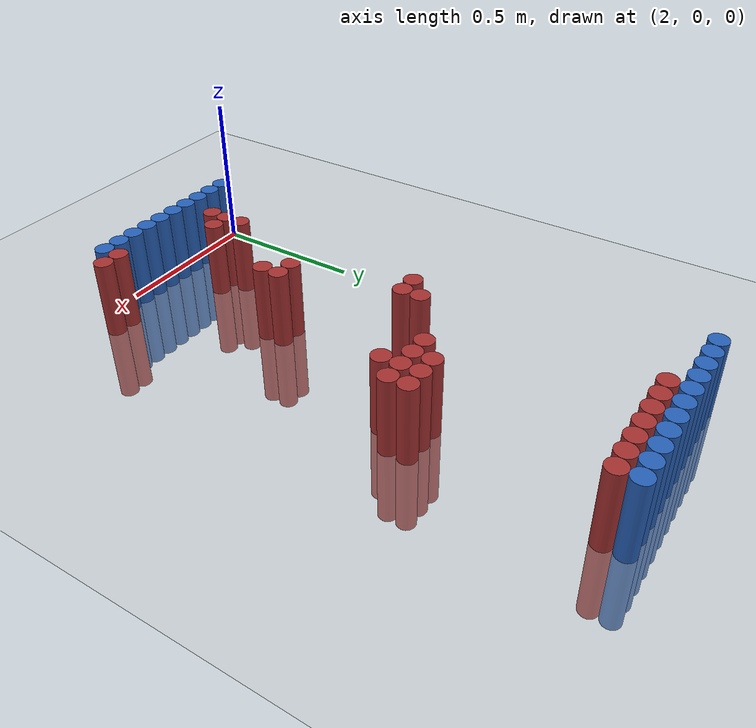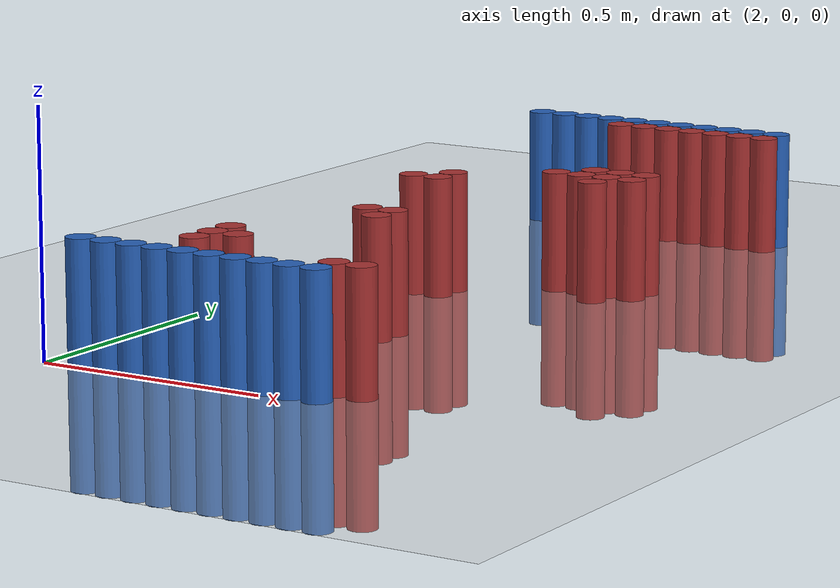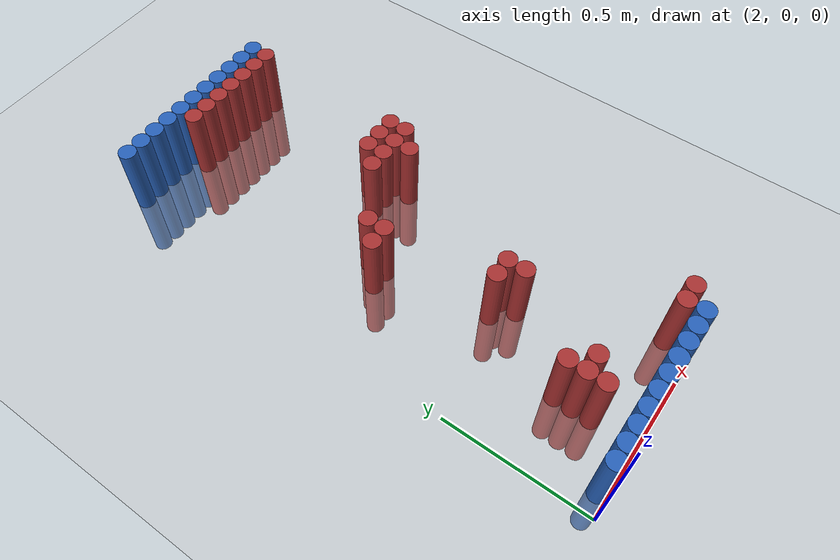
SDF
<sdf version="1.6">
 <world name="default">
  <model name="ground_plane">
   <static>1</static>
   <link name="link">
    <collision name="collision">
     <geometry><plane><normal>0 0 1</normal><size>100 100</size></plane></geometry>
     <surface><friction><ode><mu>100</mu><mu2>50</mu2></ode></friction></surface>
    </collision>
    <visual name="visual">
     <cast_shadows>0</cast_shadows>
     <geometry><plane><normal>0 0 1</normal><size>100 100</size></plane></geometry>
     <material>
      <script><uri>file://media/materials/scripts/gazebo.material</uri><name>Gazebo/Grey</name></script>
     </material>
    </visual>
   </link>
  </model>
  <model name="unit_cylinder_95">
   <static>1</static>
   <pose>2.070000 1.770000 0.000000 0.000000 0.000000 0.000000</pose>
   <link name="link">
    <inertial>
     <mass>1</mass>
     <inertia><ixx>0.145833</ixx><ixy>0</ixy><ixz>0</ixz><iyy>0.145833</iyy><iyz>0</iyz><izz>0.125</izz></inertia>
    </inertial>
    <collision name="collision">
     <geometry><cylinder><radius>0.030000</radius><length>0.5</length></cylinder></geometry>
    </collision>
    <visual name="visual">
     <geometry><cylinder><radius>0.030000</radius><length>0.5</length></cylinder></geometry>
     <material>
      <ambient>0.152000 0.379000 0.720000 1</ambient>
      <diffuse>0.152000 0.379000 0.720000 1</diffuse>
     </material>
     <material>
      <script><name>Gazebo/Grey</name><uri>file://media/materials/scripts/gazebo.material</uri></script>
     </material>
    </visual>
   </link>
  </model>
  <model name="unit_cylinder_96">
   <static>1</static>
   <pose>2.130000 1.770000 0.000000 0.000000 0.000000 0.000000</pose>
   <link name="link">
    <inertial>
     <mass>1</mass>
     <inertia><ixx>0.145833</ixx><ixy>0</ixy><ixz>0</ixz><iyy>0.145833</iyy><iyz>0</iyz><izz>0.125</izz></inertia>
    </inertial>
    <collision name="collision">
     <geometry><cylinder><radius>0.030000</radius><length>0.5</length></cylinder></geometry>
    </collision>
    <visual name="visual">
     <geometry><cylinder><radius>0.030000</radius><length>0.5</length></cylinder></geometry>
     <material>
      <ambient>0.152000 0.379000 0.720000 1</ambient>
      <diffuse>0.152000 0.379000 0.720000 1</diffuse>
     </material>
     <material>
      <script><name>Gazebo/Grey</name><uri>file://media/materials/scripts/gazebo.material</uri></script>
     </material>
    </visual>
   </link>
  </model>
  <model name="unit_cylinder_97">
   <static>1</static>
   <pose>2.190000 1.770000 0.000000 0.000000 0.000000 0.000000</pose>
   <link name="link">
    <inertial>
     <mass>1</mass>
     <inertia><ixx>0.145833</ixx><ixy>0</ixy><ixz>0</ixz><iyy>0.145833</iyy><iyz>0</iyz><izz>0.125</izz></inertia>
    </inertial>
    <collision name="collision">
     <geometry><cylinder><radius>0.030000</radius><length>0.5</length></cylinder></geometry>
    </collision>
    <visual name="visual">
     <geometry><cylinder><radius>0.030000</radius><length>0.5</length></cylinder></geometry>
     <material>
      <ambient>0.152000 0.379000 0.720000 1</ambient>
      <diffuse>0.152000 0.379000 0.720000 1</diffuse>
     </material>
     <material>
      <script><name>Gazebo/Grey</name><uri>file://media/materials/scripts/gazebo.material</uri></script>
     </material>
    </visual>
   </link>
  </model>
  <model name="unit_cylinder_98">
   <static>1</static>
   <pose>2.250000 1.770000 0.000000 0.000000 0.000000 0.000000</pose>
   <link name="link">
    <inertial>
     <mass>1</mass>
     <inertia><ixx>0.145833</ixx><ixy>0</ixy><ixz>0</ixz><iyy>0.145833</iyy><iyz>0</iyz><izz>0.125</izz></inertia>
    </inertial>
    <collision name="collision">
     <geometry><cylinder><radius>0.030000</radius><length>0.5</length></cylinder></geometry>
    </collision>
    <visual name="visual">
     <geometry><cylinder><radius>0.030000</radius><length>0.5</length></cylinder></geometry>
     <material>
      <ambient>0.152000 0.379000 0.720000 1</ambient>
      <diffuse>0.152000 0.379000 0.720000 1</diffuse>
     </material>
     <material>
      <script><name>Gazebo/Grey</name><uri>file://media/materials/scripts/gazebo.material</uri></script>
     </material>
    </visual>
   </link>
  </model>
  <model name="unit_cylinder_99">
   <static>1</static>
   <pose>2.310000 1.770000 0.000000 0.000000 0.000000 0.000000</pose>
   <link name="link">
    <inertial>
     <mass>1</mass>
     <inertia><ixx>0.145833</ixx><ixy>0</ixy><ixz>0</ixz><iyy>0.145833</iyy><iyz>0</iyz><izz>0.125</izz></inertia>
    </inertial>
    <collision name="collision">
     <geometry><cylinder><radius>0.030000</radius><length>0.5</length></cylinder></geometry>
    </collision>
    <visual name="visual">
     <geometry><cylinder><radius>0.030000</radius><length>0.5</length></cylinder></geometry>
     <material>
      <ambient>0.152000 0.379000 0.720000 1</ambient>
      <diffuse>0.152000 0.379000 0.720000 1</diffuse>
     </material>
     <material>
      <script><name>Gazebo/Grey</name><uri>file://media/materials/scripts/gazebo.material</uri></script>
     </material>
    </visual>
   </link>
  </model>
  <model name="unit_cylinder_100">
   <static>1</static>
   <pose>2.370000 1.770000 0.000000 0.000000 0.000000 0.000000</pose>
   <link name="link">
    <inertial>
     <mass>1</mass>
     <inertia><ixx>0.145833</ixx><ixy>0</ixy><ixz>0</ixz><iyy>0.145833</iyy><iyz>0</iyz><izz>0.125</izz></inertia>
    </inertial>
    <collision name="collision">
     <geometry><cylinder><radius>0.030000</radius><length>0.5</length></cylinder></geometry>
    </collision>
    <visual name="visual">
     <geometry><cylinder><radius>0.030000</radius><length>0.5</length></cylinder></geometry>
     <material>
      <ambient>0.152000 0.379000 0.720000 1</ambient>
      <diffuse>0.152000 0.379000 0.720000 1</diffuse>
     </material>
     <material>
      <script><name>Gazebo/Grey</name><uri>file://media/materials/scripts/gazebo.material</uri></script>
     </material>
    </visual>
   </link>
  </model>
  <model name="unit_cylinder_101">
   <static>1</static>
   <pose>2.430000 1.770000 0.000000 0.000000 0.000000 0.000000</pose>
   <link name="link">
    <inertial>
     <mass>1</mass>
     <inertia><ixx>0.145833</ixx><ixy>0</ixy><ixz>0</ixz><iyy>0.145833</iyy><iyz>0</iyz><izz>0.125</izz></inertia>
    </inertial>
    <collision name="collision">
     <geometry><cylinder><radius>0.030000</radius><length>0.5</length></cylinder></geometry>
    </collision>
    <visual name="visual">
     <geometry><cylinder><radius>0.030000</radius><length>0.5</length></cylinder></geometry>
     <material>
      <ambient>0.152000 0.379000 0.720000 1</ambient>
      <diffuse>0.152000 0.379000 0.720000 1</diffuse>
     </material>
     <material>
      <script><name>Gazebo/Grey</name><uri>file://media/materials/scripts/gazebo.material</uri></script>
     </material>
    </visual>
   </link>
  </model>
  <model name="unit_cylinder_102">
   <static>1</static>
   <pose>2.490000 1.770000 0.000000 0.000000 0.000000 0.000000</pose>
   <link name="link">
    <inertial>
     <mass>1</mass>
     <inertia><ixx>0.145833</ixx><ixy>0</ixy><ixz>0</ixz><iyy>0.145833</iyy><iyz>0</iyz><izz>0.125</izz></inertia>
    </inertial>
    <collision name="collision">
     <geometry><cylinder><radius>0.030000</radius><length>0.5</length></cylinder></geometry>
    </collision>
    <visual name="visual">
     <geometry><cylinder><radius>0.030000</radius><length>0.5</length></cylinder></geometry>
     <material>
      <ambient>0.152000 0.379000 0.720000 1</ambient>
      <diffuse>0.152000 0.379000 0.720000 1</diffuse>
     </material>
     <material>
      <script><name>Gazebo/Grey</name><uri>file://media/materials/scripts/gazebo.material</uri></script>
     </material>
    </visual>
   </link>
  </model>
  <model name="unit_cylinder_103">
   <static>1</static>
   <pose>2.550000 1.770000 0.000000 0.000000 0.000000 0.000000</pose>
   <link name="link">
    <inertial>
     <mass>1</mass>
     <inertia><ixx>0.145833</ixx><ixy>0</ixy><ixz>0</ixz><iyy>0.145833</iyy><iyz>0</iyz><izz>0.125</izz></inertia>
    </inertial>
    <collision name="collision">
     <geometry><cylinder><radius>0.030000</radius><length>0.5</length></cylinder></geometry>
    </collision>
    <visual name="visual">
     <geometry><cylinder><radius>0.030000</radius><length>0.5</length></cylinder></geometry>
     <material>
      <ambient>0.152000 0.379000 0.720000 1</ambient>
      <diffuse>0.152000 0.379000 0.720000 1</diffuse>
     </material>
     <material>
      <script><name>Gazebo/Grey</name><uri>file://media/materials/scripts/gazebo.material</uri></script>
     </material>
    </visual>
   </link>
  </model>
  <model name="unit_cylinder_104">
   <static>1</static>
   <pose>2.610000 1.770000 0.000000 0.000000 0.000000 0.000000</pose>
   <link name="link">
    <inertial>
     <mass>1</mass>
     <inertia><ixx>0.145833</ixx><ixy>0</ixy><ixz>0</ixz><iyy>0.145833</iyy><iyz>0</iyz><izz>0.125</izz></inertia>
    </inertial>
    <collision name="collision">
     <geometry><cylinder><radius>0.030000</radius><length>0.5</length></cylinder></geometry>
    </collision>
    <visual name="visual">
     <geometry><cylinder><radius>0.030000</radius><length>0.5</length></cylinder></geometry>
     <material>
      <ambient>0.152000 0.379000 0.720000 1</ambient>
      <diffuse>0.152000 0.379000 0.720000 1</diffuse>
     </material>
     <material>
      <script><name>Gazebo/Grey</name><uri>file://media/materials/scripts/gazebo.material</uri></script>
     </material>
    </visual>
   </link>
  </model>
  <model name="unit_cylinder_105">
   <static>1</static>
   <pose>2.670000 1.770000 0.000000 0.000000 0.000000 0.000000</pose>
   <link name="link">
    <inertial>
     <mass>1</mass>
     <inertia><ixx>0.145833</ixx><ixy>0</ixy><ixz>0</ixz><iyy>0.145833</iyy><iyz>0</iyz><izz>0.125</izz></inertia>
    </inertial>
    <collision name="collision">
     <geometry><cylinder><radius>0.030000</radius><length>0.5</length></cylinder></geometry>
    </collision>
    <visual name="visual">
     <geometry><cylinder><radius>0.030000</radius><length>0.5</length></cylinder></geometry>
     <material>
      <ambient>0.152000 0.379000 0.720000 1</ambient>
      <diffuse>0.152000 0.379000 0.720000 1</diffuse>
     </material>
     <material>
      <script><name>Gazebo/Grey</name><uri>file://media/materials/scripts/gazebo.material</uri></script>
     </material>
    </visual>
   </link>
  </model>
  <model name="unit_cylinder_125">
   <static>1</static>
   <pose>2.310000 1.710000 0.000000 0.000000 0.000000 0.000000</pose>
   <link name="link">
    <inertial>
     <mass>1</mass>
     <inertia><ixx>0.145833</ixx><ixy>0</ixy><ixz>0</ixz><iyy>0.145833</iyy><iyz>0</iyz><izz>0.125</izz></inertia>
    </inertial>
    <collision name="collision">
     <geometry><cylinder><radius>0.030000</radius><length>0.5</length></cylinder></geometry>
    </collision>
    <visual name="visual">
     <geometry><cylinder><radius>0.030000</radius><length>0.5</length></cylinder></geometry>
     <material>
      <ambient>0.648000 0.192000 0.192000 1</ambient>
      <diffuse>0.648000 0.192000 0.192000 1</diffuse>
     </material>
     <material>
      <script><name>Gazebo/Grey</name><uri>file://media/materials/scripts/gazebo.material</uri></script>
     </material>
    </visual>
   </link>
  </model>
  <model name="unit_cylinder_126">
   <static>1</static>
   <pose>2.370000 1.710000 0.000000 0.000000 0.000000 0.000000</pose>
   <link name="link">
    <inertial>
     <mass>1</mass>
     <inertia><ixx>0.145833</ixx><ixy>0</ixy><ixz>0</ixz><iyy>0.145833</iyy><iyz>0</iyz><izz>0.125</izz></inertia>
    </inertial>
    <collision name="collision">
     <geometry><cylinder><radius>0.030000</radius><length>0.5</length></cylinder></geometry>
    </collision>
    <visual name="visual">
     <geometry><cylinder><radius>0.030000</radius><length>0.5</length></cylinder></geometry>
     <material>
      <ambient>0.648000 0.192000 0.192000 1</ambient>
      <diffuse>0.648000 0.192000 0.192000 1</diffuse>
     </material>
     <material>
      <script><name>Gazebo/Grey</name><uri>file://media/materials/scripts/gazebo.material</uri></script>
     </material>
    </visual>
   </link>
  </model>
  <model name="unit_cylinder_127">
   <static>1</static>
   <pose>2.430000 1.710000 0.000000 0.000000 0.000000 0.000000</pose>
   <link name="link">
    <inertial>
     <mass>1</mass>
     <inertia><ixx>0.145833</ixx><ixy>0</ixy><ixz>0</ixz><iyy>0.145833</iyy><iyz>0</iyz><izz>0.125</izz></inertia>
    </inertial>
    <collision name="collision">
     <geometry><cylinder><radius>0.030000</radius><length>0.5</length></cylinder></geometry>
    </collision>
    <visual name="visual">
     <geometry><cylinder><radius>0.030000</radius><length>0.5</length></cylinder></geometry>
     <material>
      <ambient>0.648000 0.192000 0.192000 1</ambient>
      <diffuse>0.648000 0.192000 0.192000 1</diffuse>
     </material>
     <material>
      <script><name>Gazebo/Grey</name><uri>file://media/materials/scripts/gazebo.material</uri></script>
     </material>
    </visual>
   </link>
  </model>
  <model name="unit_cylinder_128">
   <static>1</static>
   <pose>2.490000 1.710000 0.000000 0.000000 0.000000 0.000000</pose>
   <link name="link">
    <inertial>
     <mass>1</mass>
     <inertia><ixx>0.145833</ixx><ixy>0</ixy><ixz>0</ixz><iyy>0.145833</iyy><iyz>0</iyz><izz>0.125</izz></inertia>
    </inertial>
    <collision name="collision">
     <geometry><cylinder><radius>0.030000</radius><length>0.5</length></cylinder></geometry>
    </collision>
    <visual name="visual">
     <geometry><cylinder><radius>0.030000</radius><length>0.5</length></cylinder></geometry>
     <material>
      <ambient>0.648000 0.192000 0.192000 1</ambient>
      <diffuse>0.648000 0.192000 0.192000 1</diffuse>
     </material>
     <material>
      <script><name>Gazebo/Grey</name><uri>file://media/materials/scripts/gazebo.material</uri></script>
     </material>
    </visual>
   </link>
  </model>
  <model name="unit_cylinder_129">
   <static>1</static>
   <pose>2.550000 1.710000 0.000000 0.000000 0.000000 0.000000</pose>
   <link name="link">
    <inertial>
     <mass>1</mass>
     <inertia><ixx>0.145833</ixx><ixy>0</ixy><ixz>0</ixz><iyy>0.145833</iyy><iyz>0</iyz><izz>0.125</izz></inertia>
    </inertial>
    <collision name="collision">
     <geometry><cylinder><radius>0.030000</radius><length>0.5</length></cylinder></geometry>
    </collision>
    <visual name="visual">
     <geometry><cylinder><radius>0.030000</radius><length>0.5</length></cylinder></geometry>
     <material>
      <ambient>0.648000 0.192000 0.192000 1</ambient>
      <diffuse>0.648000 0.192000 0.192000 1</diffuse>
     </material>
     <material>
      <script><name>Gazebo/Grey</name><uri>file://media/materials/scripts/gazebo.material</uri></script>
     </material>
    </visual>
   </link>
  </model>
  <model name="unit_cylinder_130">
   <static>1</static>
   <pose>2.610000 1.710000 0.000000 0.000000 0.000000 0.000000</pose>
   <link name="link">
    <inertial>
     <mass>1</mass>
     <inertia><ixx>0.145833</ixx><ixy>0</ixy><ixz>0</ixz><iyy>0.145833</iyy><iyz>0</iyz><izz>0.125</izz></inertia>
    </inertial>
    <collision name="collision">
     <geometry><cylinder><radius>0.030000</radius><length>0.5</length></cylinder></geometry>
    </collision>
    <visual name="visual">
     <geometry><cylinder><radius>0.030000</radius><length>0.5</length></cylinder></geometry>
     <material>
      <ambient>0.648000 0.192000 0.192000 1</ambient>
      <diffuse>0.648000 0.192000 0.192000 1</diffuse>
     </material>
     <material>
      <script><name>Gazebo/Grey</name><uri>file://media/materials/scripts/gazebo.material</uri></script>
     </material>
    </visual>
   </link>
  </model>
  <model name="unit_cylinder_131">
   <static>1</static>
   <pose>2.670000 1.710000 0.000000 0.000000 0.000000 0.000000</pose>
   <link name="link">
    <inertial>
     <mass>1</mass>
     <inertia><ixx>0.145833</ixx><ixy>0</ixy><ixz>0</ixz><iyy>0.145833</iyy><iyz>0</iyz><izz>0.125</izz></inertia>
    </inertial>
    <collision name="collision">
     <geometry><cylinder><radius>0.030000</radius><length>0.5</length></cylinder></geometry>
    </collision>
    <visual name="visual">
     <geometry><cylinder><radius>0.030000</radius><length>0.5</length></cylinder></geometry>
     <material>
      <ambient>0.648000 0.192000 0.192000 1</ambient>
      <diffuse>0.648000 0.192000 0.192000 1</diffuse>
     </material>
     <material>
      <script><name>Gazebo/Grey</name><uri>file://media/materials/scripts/gazebo.material</uri></script>
     </material>
    </visual>
   </link>
  </model>
  <model name="unit_cylinder_153">
   <static>1</static>
   <pose>2.550000 1.170000 0.000000 0.000000 0.000000 0.000000</pose>
   <link name="link">
    <inertial>
     <mass>1</mass>
     <inertia><ixx>0.145833</ixx><ixy>0</ixy><ixz>0</ixz><iyy>0.145833</iyy><iyz>0</iyz><izz>0.125</izz></inertia>
    </inertial>
    <collision name="collision">
     <geometry><cylinder><radius>0.030000</radius><length>0.5</length></cylinder></geometry>
    </collision>
    <visual name="visual">
     <geometry><cylinder><radius>0.030000</radius><length>0.5</length></cylinder></geometry>
     <material>
      <ambient>0.648000 0.192000 0.192000 1</ambient>
      <diffuse>0.648000 0.192000 0.192000 1</diffuse>
     </material>
     <material>
      <script><name>Gazebo/Grey</name><uri>file://media/materials/scripts/gazebo.material</uri></script>
     </material>
    </visual>
   </link>
  </model>
  <model name="unit_cylinder_154">
   <static>1</static>
   <pose>2.610000 1.170000 0.000000 0.000000 0.000000 0.000000</pose>
   <link name="link">
    <inertial>
     <mass>1</mass>
     <inertia><ixx>0.145833</ixx><ixy>0</ixy><ixz>0</ixz><iyy>0.145833</iyy><iyz>0</iyz><izz>0.125</izz></inertia>
    </inertial>
    <collision name="collision">
     <geometry><cylinder><radius>0.030000</radius><length>0.5</length></cylinder></geometry>
    </collision>
    <visual name="visual">
     <geometry><cylinder><radius>0.030000</radius><length>0.5</length></cylinder></geometry>
     <material>
      <ambient>0.648000 0.192000 0.192000 1</ambient>
      <diffuse>0.648000 0.192000 0.192000 1</diffuse>
     </material>
     <material>
      <script><name>Gazebo/Grey</name><uri>file://media/materials/scripts/gazebo.material</uri></script>
     </material>
    </visual>
   </link>
  </model>
  <model name="unit_cylinder_155">
   <static>1</static>
   <pose>2.670000 1.170000 0.000000 0.000000 0.000000 0.000000</pose>
   <link name="link">
    <inertial>
     <mass>1</mass>
     <inertia><ixx>0.145833</ixx><ixy>0</ixy><ixz>0</ixz><iyy>0.145833</iyy><iyz>0</iyz><izz>0.125</izz></inertia>
    </inertial>
    <collision name="collision">
     <geometry><cylinder><radius>0.030000</radius><length>0.5</length></cylinder></geometry>
    </collision>
    <visual name="visual">
     <geometry><cylinder><radius>0.030000</radius><length>0.5</length></cylinder></geometry>
     <material>
      <ambient>0.648000 0.192000 0.192000 1</ambient>
      <diffuse>0.648000 0.192000 0.192000 1</diffuse>
     </material>
     <material>
      <script><name>Gazebo/Grey</name><uri>file://media/materials/scripts/gazebo.material</uri></script>
     </material>
    </visual>
   </link>
  </model>
  <model name="unit_cylinder_160">
   <static>1</static>
   <pose>2.490000 1.110000 0.000000 0.000000 0.000000 0.000000</pose>
   <link name="link">
    <inertial>
     <mass>1</mass>
     <inertia><ixx>0.145833</ixx><ixy>0</ixy><ixz>0</ixz><iyy>0.145833</iyy><iyz>0</iyz><izz>0.125</izz></inertia>
    </inertial>
    <collision name="collision">
     <geometry><cylinder><radius>0.030000</radius><length>0.5</length></cylinder></geometry>
    </collision>
    <visual name="visual">
     <geometry><cylinder><radius>0.030000</radius><length>0.5</length></cylinder></geometry>
     <material>
      <ambient>0.648000 0.192000 0.192000 1</ambient>
      <diffuse>0.648000 0.192000 0.192000 1</diffuse>
     </material>
     <material>
      <script><name>Gazebo/Grey</name><uri>file://media/materials/scripts/gazebo.material</uri></script>
     </material>
    </visual>
   </link>
  </model>
  <model name="unit_cylinder_161">
   <static>1</static>
   <pose>2.550000 1.110000 0.000000 0.000000 0.000000 0.000000</pose>
   <link name="link">
    <inertial>
     <mass>1</mass>
     <inertia><ixx>0.145833</ixx><ixy>0</ixy><ixz>0</ixz><iyy>0.145833</iyy><iyz>0</iyz><izz>0.125</izz></inertia>
    </inertial>
    <collision name="collision">
     <geometry><cylinder><radius>0.030000</radius><length>0.5</length></cylinder></geometry>
    </collision>
    <visual name="visual">
     <geometry><cylinder><radius>0.030000</radius><length>0.5</length></cylinder></geometry>
     <material>
      <ambient>0.648000 0.192000 0.192000 1</ambient>
      <diffuse>0.648000 0.192000 0.192000 1</diffuse>
     </material>
     <material>
      <script><name>Gazebo/Grey</name><uri>file://media/materials/scripts/gazebo.material</uri></script>
     </material>
    </visual>
   </link>
  </model>
  <model name="unit_cylinder_162">
   <static>1</static>
   <pose>2.610000 1.110000 0.000000 0.000000 0.000000 0.000000</pose>
   <link name="link">
    <inertial>
     <mass>1</mass>
     <inertia><ixx>0.145833</ixx><ixy>0</ixy><ixz>0</ixz><iyy>0.145833</iyy><iyz>0</iyz><izz>0.125</izz></inertia>
    </inertial>
    <collision name="collision">
     <geometry><cylinder><radius>0.030000</radius><length>0.5</length></cylinder></geometry>
    </collision>
    <visual name="visual">
     <geometry><cylinder><radius>0.030000</radius><length>0.5</length></cylinder></geometry>
     <material>
      <ambient>0.648000 0.192000 0.192000 1</ambient>
      <diffuse>0.648000 0.192000 0.192000 1</diffuse>
     </material>
     <material>
      <script><name>Gazebo/Grey</name><uri>file://media/materials/scripts/gazebo.material</uri></script>
     </material>
    </visual>
   </link>
  </model>
  <model name="unit_cylinder_163">
   <static>1</static>
   <pose>2.670000 1.110000 0.000000 0.000000 0.000000 0.000000</pose>
   <link name="link">
    <inertial>
     <mass>1</mass>
     <inertia><ixx>0.145833</ixx><ixy>0</ixy><ixz>0</ixz><iyy>0.145833</iyy><iyz>0</iyz><izz>0.125</izz></inertia>
    </inertial>
    <collision name="collision">
     <geometry><cylinder><radius>0.030000</radius><length>0.5</length></cylinder></geometry>
    </collision>
    <visual name="visual">
     <geometry><cylinder><radius>0.030000</radius><length>0.5</length></cylinder></geometry>
     <material>
      <ambient>0.648000 0.192000 0.192000 1</ambient>
      <diffuse>0.648000 0.192000 0.192000 1</diffuse>
     </material>
     <material>
      <script><name>Gazebo/Grey</name><uri>file://media/materials/scripts/gazebo.material</uri></script>
     </material>
    </visual>
   </link>
  </model>
  <model name="unit_cylinder_170">
   <static>1</static>
   <pose>2.610000 1.050000 0.000000 0.000000 0.000000 0.000000</pose>
   <link name="link">
    <inertial>
     <mass>1</mass>
     <inertia><ixx>0.145833</ixx><ixy>0</ixy><ixz>0</ixz><iyy>0.145833</iyy><iyz>0</iyz><izz>0.125</izz></inertia>
    </inertial>
    <collision name="collision">
     <geometry><cylinder><radius>0.030000</radius><length>0.5</length></cylinder></geometry>
    </collision>
    <visual name="visual">
     <geometry><cylinder><radius>0.030000</radius><length>0.5</length></cylinder></geometry>
     <material>
      <ambient>0.648000 0.192000 0.192000 1</ambient>
      <diffuse>0.648000 0.192000 0.192000 1</diffuse>
     </material>
     <material>
      <script><name>Gazebo/Grey</name><uri>file://media/materials/scripts/gazebo.material</uri></script>
     </material>
    </visual>
   </link>
  </model>
  <model name="unit_cylinder_174">
   <static>1</static>
   <pose>2.310000 0.990000 0.000000 0.000000 0.000000 0.000000</pose>
   <link name="link">
    <inertial>
     <mass>1</mass>
     <inertia><ixx>0.145833</ixx><ixy>0</ixy><ixz>0</ixz><iyy>0.145833</iyy><iyz>0</iyz><izz>0.125</izz></inertia>
    </inertial>
    <collision name="collision">
     <geometry><cylinder><radius>0.030000</radius><length>0.5</length></cylinder></geometry>
    </collision>
    <visual name="visual">
     <geometry><cylinder><radius>0.030000</radius><length>0.5</length></cylinder></geometry>
     <material>
      <ambient>0.648000 0.192000 0.192000 1</ambient>
      <diffuse>0.648000 0.192000 0.192000 1</diffuse>
     </material>
     <material>
      <script><name>Gazebo/Grey</name><uri>file://media/materials/scripts/gazebo.material</uri></script>
     </material>
    </visual>
   </link>
  </model>
  <model name="unit_cylinder_178">
   <static>1</static>
   <pose>2.250000 0.930000 0.000000 0.000000 0.000000 0.000000</pose>
   <link name="link">
    <inertial>
     <mass>1</mass>
     <inertia><ixx>0.145833</ixx><ixy>0</ixy><ixz>0</ixz><iyy>0.145833</iyy><iyz>0</iyz><izz>0.125</izz></inertia>
    </inertial>
    <collision name="collision">
     <geometry><cylinder><radius>0.030000</radius><length>0.5</length></cylinder></geometry>
    </collision>
    <visual name="visual">
     <geometry><cylinder><radius>0.030000</radius><length>0.5</length></cylinder></geometry>
     <material>
      <ambient>0.648000 0.192000 0.192000 1</ambient>
      <diffuse>0.648000 0.192000 0.192000 1</diffuse>
     </material>
     <material>
      <script><name>Gazebo/Grey</name><uri>file://media/materials/scripts/gazebo.material</uri></script>
     </material>
    </visual>
   </link>
  </model>
  <model name="unit_cylinder_179">
   <static>1</static>
   <pose>2.310000 0.930000 0.000000 0.000000 0.000000 0.000000</pose>
   <link name="link">
    <inertial>
     <mass>1</mass>
     <inertia><ixx>0.145833</ixx><ixy>0</ixy><ixz>0</ixz><iyy>0.145833</iyy><iyz>0</iyz><izz>0.125</izz></inertia>
    </inertial>
    <collision name="collision">
     <geometry><cylinder><radius>0.030000</radius><length>0.5</length></cylinder></geometry>
    </collision>
    <visual name="visual">
     <geometry><cylinder><radius>0.030000</radius><length>0.5</length></cylinder></geometry>
     <material>
      <ambient>0.648000 0.192000 0.192000 1</ambient>
      <diffuse>0.648000 0.192000 0.192000 1</diffuse>
     </material>
     <material>
      <script><name>Gazebo/Grey</name><uri>file://media/materials/scripts/gazebo.material</uri></script>
     </material>
    </visual>
   </link>
  </model>
  <model name="unit_cylinder_185">
   <static>1</static>
   <pose>2.370000 0.570000 0.000000 0.000000 0.000000 0.000000</pose>
   <link name="link">
    <inertial>
     <mass>1</mass>
     <inertia><ixx>0.145833</ixx><ixy>0</ixy><ixz>0</ixz><iyy>0.145833</iyy><iyz>0</iyz><izz>0.125</izz></inertia>
    </inertial>
    <collision name="collision">
     <geometry><cylinder><radius>0.030000</radius><length>0.5</length></cylinder></geometry>
    </collision>
    <visual name="visual">
     <geometry><cylinder><radius>0.030000</radius><length>0.5</length></cylinder></geometry>
     <material>
      <ambient>0.648000 0.192000 0.192000 1</ambient>
      <diffuse>0.648000 0.192000 0.192000 1</diffuse>
     </material>
     <material>
      <script><name>Gazebo/Grey</name><uri>file://media/materials/scripts/gazebo.material</uri></script>
     </material>
    </visual>
   </link>
  </model>
  <model name="unit_cylinder_186">
   <static>1</static>
   <pose>2.430000 0.570000 0.000000 0.000000 0.000000 0.000000</pose>
   <link name="link">
    <inertial>
     <mass>1</mass>
     <inertia><ixx>0.145833</ixx><ixy>0</ixy><ixz>0</ixz><iyy>0.145833</iyy><iyz>0</iyz><izz>0.125</izz></inertia>
    </inertial>
    <collision name="collision">
     <geometry><cylinder><radius>0.030000</radius><length>0.5</length></cylinder></geometry>
    </collision>
    <visual name="visual">
     <geometry><cylinder><radius>0.030000</radius><length>0.5</length></cylinder></geometry>
     <material>
      <ambient>0.648000 0.192000 0.192000 1</ambient>
      <diffuse>0.648000 0.192000 0.192000 1</diffuse>
     </material>
     <material>
      <script><name>Gazebo/Grey</name><uri>file://media/materials/scripts/gazebo.material</uri></script>
     </material>
    </visual>
   </link>
  </model>
  <model name="unit_cylinder_187">
   <static>1</static>
   <pose>2.430000 0.510000 0.000000 0.000000 0.000000 0.000000</pose>
   <link name="link">
    <inertial>
     <mass>1</mass>
     <inertia><ixx>0.145833</ixx><ixy>0</ixy><ixz>0</ixz><iyy>0.145833</iyy><iyz>0</iyz><izz>0.125</izz></inertia>
    </inertial>
    <collision name="collision">
     <geometry><cylinder><radius>0.030000</radius><length>0.5</length></cylinder></geometry>
    </collision>
    <visual name="visual">
     <geometry><cylinder><radius>0.030000</radius><length>0.5</length></cylinder></geometry>
     <material>
      <ambient>0.648000 0.192000 0.192000 1</ambient>
      <diffuse>0.648000 0.192000 0.192000 1</diffuse>
     </material>
     <material>
      <script><name>Gazebo/Grey</name><uri>file://media/materials/scripts/gazebo.material</uri></script>
     </material>
    </visual>
   </link>
  </model>
  <model name="unit_cylinder_194">
   <static>1</static>
   <pose>2.250000 0.270000 0.000000 0.000000 0.000000 0.000000</pose>
   <link name="link">
    <inertial>
     <mass>1</mass>
     <inertia><ixx>0.145833</ixx><ixy>0</ixy><ixz>0</ixz><iyy>0.145833</iyy><iyz>0</iyz><izz>0.125</izz></inertia>
    </inertial>
    <collision name="collision">
     <geometry><cylinder><radius>0.030000</radius><length>0.5</length></cylinder></geometry>
    </collision>
    <visual name="visual">
     <geometry><cylinder><radius>0.030000</radius><length>0.5</length></cylinder></geometry>
     <material>
      <ambient>0.648000 0.192000 0.192000 1</ambient>
      <diffuse>0.648000 0.192000 0.192000 1</diffuse>
     </material>
     <material>
      <script><name>Gazebo/Grey</name><uri>file://media/materials/scripts/gazebo.material</uri></script>
     </material>
    </visual>
   </link>
  </model>
  <model name="unit_cylinder_195">
   <static>1</static>
   <pose>2.250000 0.210000 0.000000 0.000000 0.000000 0.000000</pose>
   <link name="link">
    <inertial>
     <mass>1</mass>
     <inertia><ixx>0.145833</ixx><ixy>0</ixy><ixz>0</ixz><iyy>0.145833</iyy><iyz>0</iyz><izz>0.125</izz></inertia>
    </inertial>
    <collision name="collision">
     <geometry><cylinder><radius>0.030000</radius><length>0.5</length></cylinder></geometry>
    </collision>
    <visual name="visual">
     <geometry><cylinder><radius>0.030000</radius><length>0.5</length></cylinder></geometry>
     <material>
      <ambient>0.648000 0.192000 0.192000 1</ambient>
      <diffuse>0.648000 0.192000 0.192000 1</diffuse>
     </material>
     <material>
      <script><name>Gazebo/Grey</name><uri>file://media/materials/scripts/gazebo.material</uri></script>
     </material>
    </visual>
   </link>
  </model>
  <model name="unit_cylinder_196">
   <static>1</static>
   <pose>2.310000 0.210000 0.000000 0.000000 0.000000 0.000000</pose>
   <link name="link">
    <inertial>
     <mass>1</mass>
     <inertia><ixx>0.145833</ixx><ixy>0</ixy><ixz>0</ixz><iyy>0.145833</iyy><iyz>0</iyz><izz>0.125</izz></inertia>
    </inertial>
    <collision name="collision">
     <geometry><cylinder><radius>0.030000</radius><length>0.5</length></cylinder></geometry>
    </collision>
    <visual name="visual">
     <geometry><cylinder><radius>0.030000</radius><length>0.5</length></cylinder></geometry>
     <material>
      <ambient>0.648000 0.192000 0.192000 1</ambient>
      <diffuse>0.648000 0.192000 0.192000 1</diffuse>
     </material>
     <material>
      <script><name>Gazebo/Grey</name><uri>file://media/materials/scripts/gazebo.material</uri></script>
     </material>
    </visual>
   </link>
  </model>
  <model name="unit_cylinder_197">
   <static>1</static>
   <pose>2.250000 0.150000 0.000000 0.000000 0.000000 0.000000</pose>
   <link name="link">
    <inertial>
     <mass>1</mass>
     <inertia><ixx>0.145833</ixx><ixy>0</ixy><ixz>0</ixz><iyy>0.145833</iyy><iyz>0</iyz><izz>0.125</izz></inertia>
    </inertial>
    <collision name="collision">
     <geometry><cylinder><radius>0.030000</radius><length>0.5</length></cylinder></geometry>
    </collision>
    <visual name="visual">
     <geometry><cylinder><radius>0.030000</radius><length>0.5</length></cylinder></geometry>
     <material>
      <ambient>0.648000 0.192000 0.192000 1</ambient>
      <diffuse>0.648000 0.192000 0.192000 1</diffuse>
     </material>
     <material>
      <script><name>Gazebo/Grey</name><uri>file://media/materials/scripts/gazebo.material</uri></script>
     </material>
    </visual>
   </link>
  </model>
  <model name="unit_cylinder_199">
   <static>1</static>
   <pose>2.610000 0.090000 0.000000 0.000000 0.000000 0.000000</pose>
   <link name="link">
    <inertial>
     <mass>1</mass>
     <inertia><ixx>0.145833</ixx><ixy>0</ixy><ixz>0</ixz><iyy>0.145833</iyy><iyz>0</iyz><izz>0.125</izz></inertia>
    </inertial>
    <collision name="collision">
     <geometry><cylinder><radius>0.030000</radius><length>0.5</length></cylinder></geometry>
    </collision>
    <visual name="visual">
     <geometry><cylinder><radius>0.030000</radius><length>0.5</length></cylinder></geometry>
     <material>
      <ambient>0.648000 0.192000 0.192000 1</ambient>
      <diffuse>0.648000 0.192000 0.192000 1</diffuse>
     </material>
     <material>
      <script><name>Gazebo/Grey</name><uri>file://media/materials/scripts/gazebo.material</uri></script>
     </material>
    </visual>
   </link>
  </model>
  <model name="unit_cylinder_200">
   <static>1</static>
   <pose>2.670000 0.090000 0.000000 0.000000 0.000000 0.000000</pose>
   <link name="link">
    <inertial>
     <mass>1</mass>
     <inertia><ixx>0.145833</ixx><ixy>0</ixy><ixz>0</ixz><iyy>0.145833</iyy><iyz>0</iyz><izz>0.125</izz></inertia>
    </inertial>
    <collision name="collision">
     <geometry><cylinder><radius>0.030000</radius><length>0.5</length></cylinder></geometry>
    </collision>
    <visual name="visual">
     <geometry><cylinder><radius>0.030000</radius><length>0.5</length></cylinder></geometry>
     <material>
      <ambient>0.648000 0.192000 0.192000 1</ambient>
      <diffuse>0.648000 0.192000 0.192000 1</diffuse>
     </material>
     <material>
      <script><name>Gazebo/Grey</name><uri>file://media/materials/scripts/gazebo.material</uri></script>
     </material>
    </visual>
   </link>
  </model>
  <model name="unit_cylinder_208">
   <static>1</static>
   <pose>2.070000 0.030000 0.000000 0.000000 0.000000 0.000000</pose>
   <link name="link">
    <inertial>
     <mass>1</mass>
     <inertia><ixx>0.145833</ixx><ixy>0</ixy><ixz>0</ixz><iyy>0.145833</iyy><iyz>0</iyz><izz>0.125</izz></inertia>
    </inertial>
    <collision name="collision">
     <geometry><cylinder><radius>0.030000</radius><length>0.5</length></cylinder></geometry>
    </collision>
    <visual name="visual">
     <geometry><cylinder><radius>0.030000</radius><length>0.5</length></cylinder></geometry>
     <material>
      <ambient>0.152000 0.379000 0.720000 1</ambient>
      <diffuse>0.152000 0.379000 0.720000 1</diffuse>
     </material>
     <material>
      <script><name>Gazebo/Grey</name><uri>file://media/materials/scripts/gazebo.material</uri></script>
     </material>
    </visual>
   </link>
  </model>
  <model name="unit_cylinder_209">
   <static>1</static>
   <pose>2.130000 0.030000 0.000000 0.000000 0.000000 0.000000</pose>
   <link name="link">
    <inertial>
     <mass>1</mass>
     <inertia><ixx>0.145833</ixx><ixy>0</ixy><ixz>0</ixz><iyy>0.145833</iyy><iyz>0</iyz><izz>0.125</izz></inertia>
    </inertial>
    <collision name="collision">
     <geometry><cylinder><radius>0.030000</radius><length>0.5</length></cylinder></geometry>
    </collision>
    <visual name="visual">
     <geometry><cylinder><radius>0.030000</radius><length>0.5</length></cylinder></geometry>
     <material>
      <ambient>0.152000 0.379000 0.720000 1</ambient>
      <diffuse>0.152000 0.379000 0.720000 1</diffuse>
     </material>
     <material>
      <script><name>Gazebo/Grey</name><uri>file://media/materials/scripts/gazebo.material</uri></script>
     </material>
    </visual>
   </link>
  </model>
  <model name="unit_cylinder_210">
   <static>1</static>
   <pose>2.190000 0.030000 0.000000 0.000000 0.000000 0.000000</pose>
   <link name="link">
    <inertial>
     <mass>1</mass>
     <inertia><ixx>0.145833</ixx><ixy>0</ixy><ixz>0</ixz><iyy>0.145833</iyy><iyz>0</iyz><izz>0.125</izz></inertia>
    </inertial>
    <collision name="collision">
     <geometry><cylinder><radius>0.030000</radius><length>0.5</length></cylinder></geometry>
    </collision>
    <visual name="visual">
     <geometry><cylinder><radius>0.030000</radius><length>0.5</length></cylinder></geometry>
     <material>
      <ambient>0.152000 0.379000 0.720000 1</ambient>
      <diffuse>0.152000 0.379000 0.720000 1</diffuse>
     </material>
     <material>
      <script><name>Gazebo/Grey</name><uri>file://media/materials/scripts/gazebo.material</uri></script>
     </material>
    </visual>
   </link>
  </model>
  <model name="unit_cylinder_211">
   <static>1</static>
   <pose>2.250000 0.030000 0.000000 0.000000 0.000000 0.000000</pose>
   <link name="link">
    <inertial>
     <mass>1</mass>
     <inertia><ixx>0.145833</ixx><ixy>0</ixy><ixz>0</ixz><iyy>0.145833</iyy><iyz>0</iyz><izz>0.125</izz></inertia>
    </inertial>
    <collision name="collision">
     <geometry><cylinder><radius>0.030000</radius><length>0.5</length></cylinder></geometry>
    </collision>
    <visual name="visual">
     <geometry><cylinder><radius>0.030000</radius><length>0.5</length></cylinder></geometry>
     <material>
      <ambient>0.152000 0.379000 0.720000 1</ambient>
      <diffuse>0.152000 0.379000 0.720000 1</diffuse>
     </material>
     <material>
      <script><name>Gazebo/Grey</name><uri>file://media/materials/scripts/gazebo.material</uri></script>
     </material>
    </visual>
   </link>
  </model>
  <model name="unit_cylinder_212">
   <static>1</static>
   <pose>2.310000 0.030000 0.000000 0.000000 0.000000 0.000000</pose>
   <link name="link">
    <inertial>
     <mass>1</mass>
     <inertia><ixx>0.145833</ixx><ixy>0</ixy><ixz>0</ixz><iyy>0.145833</iyy><iyz>0</iyz><izz>0.125</izz></inertia>
    </inertial>
    <collision name="collision">
     <geometry><cylinder><radius>0.030000</radius><length>0.5</length></cylinder></geometry>
    </collision>
    <visual name="visual">
     <geometry><cylinder><radius>0.030000</radius><length>0.5</length></cylinder></geometry>
     <material>
      <ambient>0.152000 0.379000 0.720000 1</ambient>
      <diffuse>0.152000 0.379000 0.720000 1</diffuse>
     </material>
     <material>
      <script><name>Gazebo/Grey</name><uri>file://media/materials/scripts/gazebo.material</uri></script>
     </material>
    </visual>
   </link>
  </model>
  <model name="unit_cylinder_213">
   <static>1</static>
   <pose>2.370000 0.030000 0.000000 0.000000 0.000000 0.000000</pose>
   <link name="link">
    <inertial>
     <mass>1</mass>
     <inertia><ixx>0.145833</ixx><ixy>0</ixy><ixz>0</ixz><iyy>0.145833</iyy><iyz>0</iyz><izz>0.125</izz></inertia>
    </inertial>
    <collision name="collision">
     <geometry><cylinder><radius>0.030000</radius><length>0.5</length></cylinder></geometry>
    </collision>
    <visual name="visual">
     <geometry><cylinder><radius>0.030000</radius><length>0.5</length></cylinder></geometry>
     <material>
      <ambient>0.152000 0.379000 0.720000 1</ambient>
      <diffuse>0.152000 0.379000 0.720000 1</diffuse>
     </material>
     <material>
      <script><name>Gazebo/Grey</name><uri>file://media/materials/scripts/gazebo.material</uri></script>
     </material>
    </visual>
   </link>
  </model>
  <model name="unit_cylinder_214">
   <static>1</static>
   <pose>2.430000 0.030000 0.000000 0.000000 0.000000 0.000000</pose>
   <link name="link">
    <inertial>
     <mass>1</mass>
     <inertia><ixx>0.145833</ixx><ixy>0</ixy><ixz>0</ixz><iyy>0.145833</iyy><iyz>0</iyz><izz>0.125</izz></inertia>
    </inertial>
    <collision name="collision">
     <geometry><cylinder><radius>0.030000</radius><length>0.5</length></cylinder></geometry>
    </collision>
    <visual name="visual">
     <geometry><cylinder><radius>0.030000</radius><length>0.5</length></cylinder></geometry>
     <material>
      <ambient>0.152000 0.379000 0.720000 1</ambient>
      <diffuse>0.152000 0.379000 0.720000 1</diffuse>
     </material>
     <material>
      <script><name>Gazebo/Grey</name><uri>file://media/materials/scripts/gazebo.material</uri></script>
     </material>
    </visual>
   </link>
  </model>
  <model name="unit_cylinder_215">
   <static>1</static>
   <pose>2.490000 0.030000 0.000000 0.000000 0.000000 0.000000</pose>
   <link name="link">
    <inertial>
     <mass>1</mass>
     <inertia><ixx>0.145833</ixx><ixy>0</ixy><ixz>0</ixz><iyy>0.145833</iyy><iyz>0</iyz><izz>0.125</izz></inertia>
    </inertial>
    <collision name="collision">
     <geometry><cylinder><radius>0.030000</radius><length>0.5</length></cylinder></geometry>
    </collision>
    <visual name="visual">
     <geometry><cylinder><radius>0.030000</radius><length>0.5</length></cylinder></geometry>
     <material>
      <ambient>0.152000 0.379000 0.720000 1</ambient>
      <diffuse>0.152000 0.379000 0.720000 1</diffuse>
     </material>
     <material>
      <script><name>Gazebo/Grey</name><uri>file://media/materials/scripts/gazebo.material</uri></script>
     </material>
    </visual>
   </link>
  </model>
  <model name="unit_cylinder_216">
   <static>1</static>
   <pose>2.550000 0.030000 0.000000 0.000000 0.000000 0.000000</pose>
   <link name="link">
    <inertial>
     <mass>1</mass>
     <inertia><ixx>0.145833</ixx><ixy>0</ixy><ixz>0</ixz><iyy>0.145833</iyy><iyz>0</iyz><izz>0.125</izz></inertia>
    </inertial>
    <collision name="collision">
     <geometry><cylinder><radius>0.030000</radius><length>0.5</length></cylinder></geometry>
    </collision>
    <visual name="visual">
     <geometry><cylinder><radius>0.030000</radius><length>0.5</length></cylinder></geometry>
     <material>
      <ambient>0.152000 0.379000 0.720000 1</ambient>
      <diffuse>0.152000 0.379000 0.720000 1</diffuse>
     </material>
     <material>
      <script><name>Gazebo/Grey</name><uri>file://media/materials/scripts/gazebo.material</uri></script>
     </material>
    </visual>
   </link>
  </model>
  <model name="unit_cylinder_217">
   <static>1</static>
   <pose>2.610000 0.030000 0.000000 0.000000 0.000000 0.000000</pose>
   <link name="link">
    <inertial>
     <mass>1</mass>
     <inertia><ixx>0.145833</ixx><ixy>0</ixy><ixz>0</ixz><iyy>0.145833</iyy><iyz>0</iyz><izz>0.125</izz></inertia>
    </inertial>
    <collision name="collision">
     <geometry><cylinder><radius>0.030000</radius><length>0.5</length></cylinder></geometry>
    </collision>
    <visual name="visual">
     <geometry><cylinder><radius>0.030000</radius><length>0.5</length></cylinder></geometry>
     <material>
      <ambient>0.152000 0.379000 0.720000 1</ambient>
      <diffuse>0.152000 0.379000 0.720000 1</diffuse>
     </material>
     <material>
      <script><name>Gazebo/Grey</name><uri>file://media/materials/scripts/gazebo.material</uri></script>
     </material>
    </visual>
   </link>
  </model>
 </world>
</sdf>
